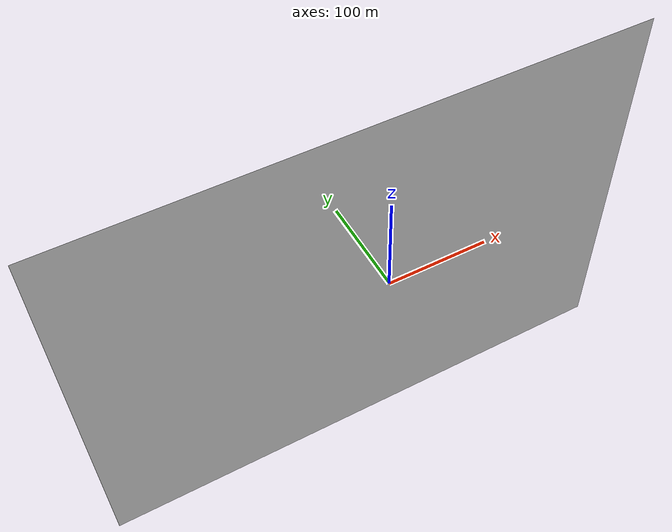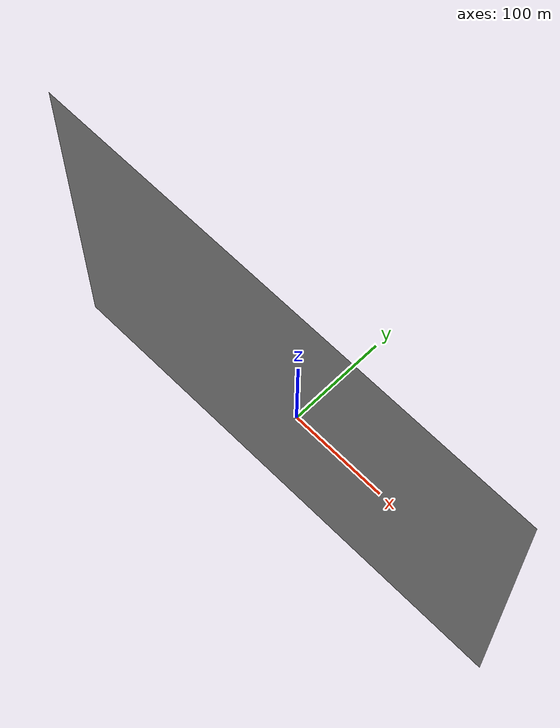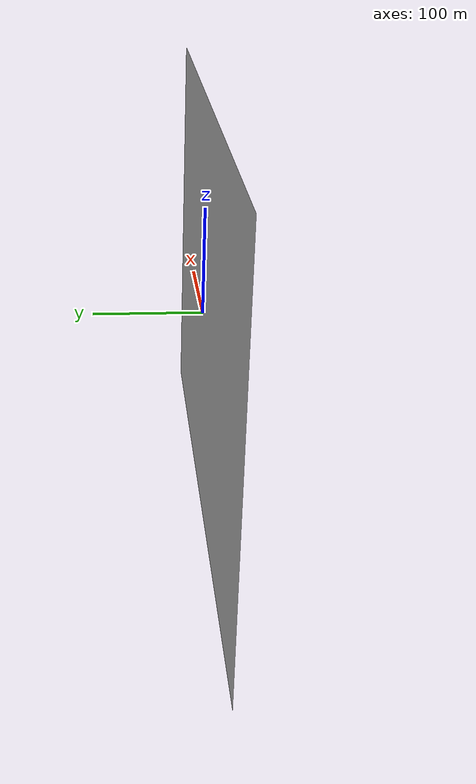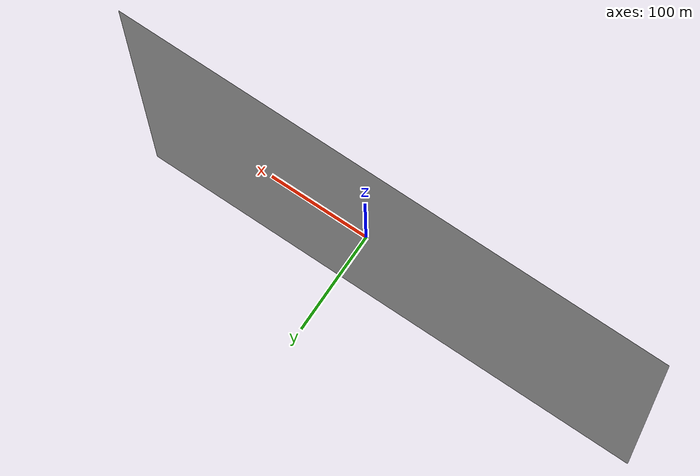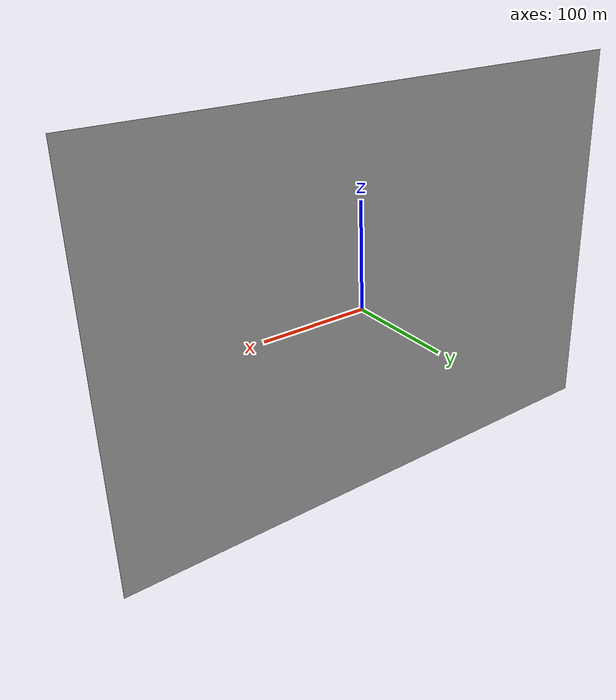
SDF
<sdf version="1.9">
 <world name="iris_lake">
  <physics name="1ms" type="ignore">
   <max_step_size>0.001</max_step_size>
   <real_time_factor>1.0</real_time_factor>
  </physics>
  <plugin filename="gz-sim-physics-system" name="gz::sim::systems::Physics"/>
  <plugin filename="gz-sim-sensors-system" name="gz::sim::systems::Sensors">
   <render_engine>ogre2</render_engine>
  </plugin>
  <plugin filename="gz-sim-user-commands-system" name="gz::sim::systems::UserCommands"/>
  <plugin filename="gz-sim-scene-broadcaster-system" name="gz::sim::systems::SceneBroadcaster"/>
  <plugin filename="gz-sim-imu-system" name="gz::sim::systems::Imu"/>
  <plugin filename="gz-sim-navsat-system" name="gz::sim::systems::NavSat"/>
  <scene><ambient>1.0 1.0 1.0</ambient><background>0.8 0.8 0.8</background></scene>
  <spherical_coordinates>
   <latitude_deg>6.7951</latitude_deg>
   <longitude_deg>79.9006</longitude_deg>
   <elevation>10</elevation>
   <heading_deg>0</heading_deg>
   <surface_model>EARTH_WGS84</surface_model>
  </spherical_coordinates>
  <light type="directional" name="sun">
   <pose>0 0 10 0 0 0</pose>
   <diffuse>0.8 0.8 0.8 1</diffuse>
   <specular>0.8 0.8 0.8 1</specular>
   <attenuation>
    <range>1000</range>
    <constant>0.9</constant>
    <linear>0.01</linear>
    <quadratic>0.001</quadratic>
   </attenuation>
   <direction>-0.5 0.1 -0.9</direction>
  </light>
  <model name="axes">
   <static>1</static>
   <link name="link">
    <visual name="r">
     <cast_shadows>0</cast_shadows>
     <pose>5 0 0.1 0 0 0</pose>
     <geometry><box><size>10 0.01 0.01</size></box></geometry>
     <material>
      <ambient>1 0 0 0.8</ambient>
      <diffuse>1 0 0 0.8</diffuse>
      <emissive>1 0 0 0.8</emissive>
      <specular>0.5 0.5 0.5 0.8</specular>
     </material>
    </visual>
    <visual name="g">
     <cast_shadows>0</cast_shadows>
     <pose>0 5 0.1 0 0 0</pose>
     <geometry><box><size>0.01 10 0.01</size></box></geometry>
     <material>
      <ambient>0 1 0 0.8</ambient>
      <diffuse>0 1 0 0.8</diffuse>
      <emissive>0 1 0 0.8</emissive>
      <specular>0.5 0.5 0.5 0.8</specular>
     </material>
    </visual>
    <visual name="b">
     <cast_shadows>0</cast_shadows>
     <pose>0 0 5.1 0 0 0</pose>
     <geometry><box><size>0.01 0.01 10</size></box></geometry>
     <material>
      <ambient>0 0 1 0.8</ambient>
      <diffuse>0 0 1 0.8</diffuse>
      <emissive>0 0 1 0.8</emissive>
      <specular>0.5 0.5 0.5 0.8</specular>
     </material>
    </visual>
    <sensor name="navsat_sensor" type="navsat"><always_on>1</always_on><update_rate>1</update_rate></sensor>
   </link>
  </model>
  <include><uri>model://uom_lake</uri><pose degrees="true">0 0 0 0 0 0</pose></include>
 </world>
</sdf>

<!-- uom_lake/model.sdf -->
<sdf version="1.6">
  <model name="uom_lake_terrain">
    <static>true</static>
    <link name="link">
      <collision name="collision">
        <geometry>
          <mesh>
            <uri>model://uom_lake/meshes/terrain.obj</uri>
          </mesh>
        </geometry>
      </collision>
      <visual name="visual">
        <geometry>
          <mesh>
            <uri>model://uom_lake/meshes/terrain.obj</uri>
          </mesh>
        </geometry>
        <cast_shadows>false</cast_shadows>
      </visual>
    </link>
  </model>
</sdf>
